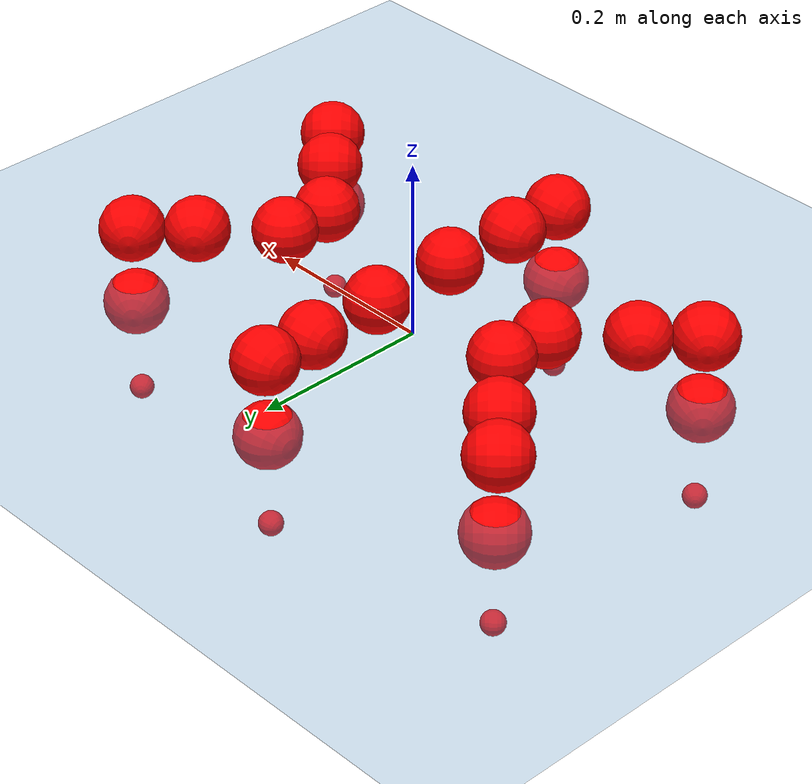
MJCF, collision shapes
<mujoco model="Golem">
  <compiler angle="radian" assetdir="assets" balanceinertia="true" inertiafromgeom="false"/>

  <option timestep="0.005" density="1.2" viscosity="2e-05"/>

  <size nkey="1"/>

  <visual>
    <quality shadowsize="8192"/>
    <map shadowclip="0.5"/>
  </visual>

  <default>
    <default class="/">
      <joint armature="0.01" damping="0.01" frictionloss="0.01"/>
      <geom contype="0" conaffinity="0" group="1" solref="-1000 -80"/>
      <site size="0.01 0.005 0.005" group="5"/>
      <general forcelimited="true" biastype="affine" gainprm="25" biasprm="0 -25 -0.5"/>
      <default class="visual">
        <geom type="mesh" group="2"/>
      </default>
      <default class="collision">
        <geom group="3"/>
      </default>
      <default class="foot">
        <geom size="0.01 0 0" condim="6" group="4" priority="1" solimp="0.015 1 0.01"/>
      </default>
      <default class="reward_collision_sphere">
        <geom group="5" rgba="1 0 0 1"/>
      </default>
    </default>
  </default>

  <asset>
    <texture type="skybox" colorspace="auto" name="//unnamed_texture_0" builtin="gradient" rgb1="0.95 0.95 0.95" rgb2="0.95 0.95 0.95" width="100" height="600"/>
    <texture type="2d" colorspace="auto" name="texplane" builtin="checker" rgb1="0.345 0.575 0.748" rgb2="0.345 0.575 0.748" markrgb="1 1 1" width="512" height="512"/>
    <material name="MatPlane" class="/" texture="texplane" texuniform="true" texrepeat="2 2" specular="0.9"/>
    <mesh name="body" class="/" file="body.stl" scale="0.001 0.001 0.001"/>
    <mesh name="coxa" class="/" file="coxa.stl" scale="0.001 0.001 0.001"/>
    <mesh name="femur" class="/" file="femur.stl" scale="0.001 0.001 0.001"/>
    <mesh name="tibia" class="/" file="tibia.stl" scale="0.001 0.001 0.001"/>
    <mesh name="tarsus" class="/" file="tarsus.stl" scale="0.001 0.001 0.001"/>
  </asset>

  <worldbody>
    <geom name="floor" class="/" size="100 100 0.125" type="plane" group="0" material="MatPlane"/>
    <light name="toplight_shadow" class="/" pos="0 0 5" dir="0.0990148 0.0990148 -0.990148" type="directional" ambient="0.04 0.04 0.04" diffuse="0.55 0.55 0.55" specular="0.12 0.12 0.12"/>
    <light name="toplight_fill" class="/" pos="0 0 5" dir="0.0990148 0.0990148 -0.990148" type="directional" castshadow="false" ambient="0.04 0.04 0.04" diffuse="0.3 0.3 0.3" specular="0.08 0.08 0.08"/>
    <body name="trunk" pos="0.000458733 -3.66626e-05 -7.75038e-05" quat="1 -2.86334e-05 0.000333314 -4.16931e-05">
      <inertial pos="0.00012163 -0.00113832 -0.00328939" quat="0.999997 -0.000850773 0.00187749 -0.00103425" mass="2.56499" diaginertia="0.0116281 0.000937801 0.0103205"/>
      <joint name="//unnamed_joint_0" type="free"/>
      <geom name="//unnamed_geom_1" class="/" pos="0 0 0.0643928" quat="1 0 0 0" type="mesh" rgba="0.9 0.9 0.9 1" mesh="body"/>
      <site name="imu" class="/" pos="0.137013 0.000269338 0.098686" size="0.00886387"/>
      <camera name="track" class="/" pos="0 -1.24391 0" quat="0.707107 0.707107 0 0" mode="trackcom"/>
      <camera name="ego_camera" class="/" pos="0.134038 0 0.100614" quat="-0.5 -0.5 0.5 0.5"/>
      <body name="coxa_RR" pos="-0.183154 -0.0514335 0.0645445" quat="0.382498 0.000353397 3.85442e-05 -0.923956">
        <inertial pos="-0.000483078 0.000832366 0.000377819" quat="0.999999 0.00145332 -0.000349106 -0.000727478" mass="0.138603" diaginertia="0.0116203 0.000931107 0.0102505"/>
        <joint name="coxa_joint_RR" class="/" pos="0 0 0" axis="-0.00019109 -0.00219013 -0.999998" range="-3.1253 3.1473" armature="0.00881765" damping="0.00845229" frictionloss="0.00872263"/>
        <geom name="//unnamed_geom_2" class="/" type="mesh" rgba="0.2 0.2 0.2 1" mesh="coxa"/>
        <geom name="//unnamed_geom_3" class="reward_collision_sphere" size="0.0354555" pos="-0.030932 0 0"/>
        <body name="femur_RR" pos="0.0605126 0.000569517 -0.00119599" quat="0.500016 -0.500009 0.499965 0.500011">
          <inertial pos="0.000249586 0.000314439 -2.45366e-06" quat="1 0.000222066 -3.71328e-05 -0.000127654" mass="0.138869" diaginertia="0.0116001 0.000926437 0.0102339"/>
          <joint name="femur_joint_RR" class="/" pos="0 0 0" axis="-0.00114419 0.00246443 -0.999996" range="-3.13567 3.13579" armature="0.00918868" damping="0.000513259" frictionloss="0.0088282"/>
          <geom name="//unnamed_geom_4" class="/" type="mesh" rgba="0.9 0.9 0.9 1" mesh="femur"/>
          <geom name="//unnamed_geom_5" class="reward_collision_sphere" size="0.0354555"/>
          <body name="tibia_RR" pos="0.000515058 -0.0671182 0.00174003" quat="1.58951e-06 1 4.8942e-07 -6.51014e-07">
            <inertial pos="0.000751864 -6.71139e-06 -7.99015e-05" quat="0.999999 -0.00110278 -0.00068901 0.000253305" mass="0.140954" diaginertia="0.0118236 0.000939088 0.0104699"/>
            <joint name="tibia_joint_RR" class="/" pos="0 0 0" axis="0.00171094 0.000714201 0.999998" range="-3.13952 3.15443" armature="0.00888198" damping="0.00107118" frictionloss="0.0089528"/>
            <geom name="//unnamed_geom_6" class="/" type="mesh" rgba="0.2 0.2 0.2 1" mesh="tibia"/>
            <geom name="//unnamed_geom_7" class="reward_collision_sphere" size="0.0354555"/>
            <body name="tarsus_RR" pos="0.0874656 -0.000308795 2.26281e-05" quat="1 -7.96006e-07 1.34293e-06 -2.09059e-06">
              <inertial pos="0.0614748 9.56747e-05 -0.000430804" quat="0.500114 0.499493 0.501868 0.498519" mass="0.137662" diaginertia="0.0116393 0.000914299 0.0101873"/>
              <joint name="tarsus_joint_RR" class="/" pos="0 0 0" axis="-0.00198573 -0.00231366 0.999995" range="-3.13686 3.13999" armature="0.00887738" damping="0.00412073" frictionloss="0.00868396"/>
              <geom name="//unnamed_geom_8" class="/" type="mesh" rgba="0.9 0.9 0.9 1" mesh="tarsus"/>
              <geom name="foot_1" class="foot" size="0.00867416" pos="0.115479 0 0" quat="0 -0.707107 0 0.707107"/>
              <geom name="//unnamed_geom_10" class="reward_collision_sphere" size="0.0354555"/>
              <geom name="//unnamed_geom_11" class="reward_collision_sphere" size="0.0132958" pos="0.11084 0 0"/>
              <site name="foot_1" class="foot" pos="0.115479 0 0" quat="0 -0.707107 0 0.707107" size="0.00886387"/>
            </body>
          </body>
        </body>
      </body>
      <body name="coxa_RM" pos="-0.000411673 -0.0838376 0.0653809" quat="0.70702 7.83497e-05 8.86464e-05 -0.707194">
        <inertial pos="0.000224604 0.000932318 -0.000366437" quat="1 6.89237e-06 -0.000869501 0.00022126" mass="0.140267" diaginertia="0.0118623 0.000942024 0.0103633"/>
        <joint name="coxa_joint_RM" class="/" pos="0 0 0" axis="-3.31952e-05 -0.00222988 -0.999998" range="-3.1364 3.13093" armature="0.00901351" damping="0.00931665" frictionloss="0.0084728"/>
        <geom name="//unnamed_geom_12" class="/" type="mesh" rgba="0.2 0.2 0.2 1" mesh="coxa"/>
        <geom name="//unnamed_geom_13" class="reward_collision_sphere" size="0.0354555" pos="-0.030932 0 0"/>
        <body name="femur_RM" pos="0.0595683 -0.000792674 -0.00134103" quat="0.50022 -0.500048 0.500066 0.499665">
          <inertial pos="-0.000423443 0.000659682 -6.75996e-05" quat="0.999999 0.000726314 0.000326606 -0.000829333" mass="0.139503" diaginertia="0.0116136 0.000936823 0.010337"/>
          <joint name="femur_joint_RM" class="/" pos="0 0 0" axis="-0.000395452 -0.000278317 -1" range="-3.1306 3.13044" armature="0.00907558" damping="0.00798844" frictionloss="0.00898276"/>
          <geom name="//unnamed_geom_14" class="/" type="mesh" rgba="0.9 0.9 0.9 1" mesh="femur"/>
          <geom name="//unnamed_geom_15" class="reward_collision_sphere" size="0.0354555"/>
          <body name="tibia_RM" pos="-0.000303067 -0.0668185 -0.00068161" quat="1.81516e-05 1 -5.19249e-05 1.8106e-05">
            <inertial pos="0.000169541 -0.000275661 0.000173877" quat="0.999997 0.000858283 -0.00246219 0.000159286" mass="0.14016" diaginertia="0.0116771 0.000935514 0.0103545"/>
            <joint name="tibia_joint_RM" class="/" pos="0 0 0" axis="0.000542041 -0.00091532 0.999999" range="-3.12906 3.14699" armature="0.0090811" damping="0.00654012" frictionloss="0.00889898"/>
            <geom name="//unnamed_geom_16" class="/" type="mesh" rgba="0.2 0.2 0.2 1" mesh="tibia"/>
            <geom name="//unnamed_geom_17" class="reward_collision_sphere" size="0.0354555"/>
            <body name="tarsus_RM" pos="0.0908045 0.000334203 0.00110018" quat="1 -0.000105706 -8.35298e-05 -0.000215726">
              <inertial pos="0.0623912 0.000628625 0.00079185" quat="0.500467 0.497105 0.500136 0.502278" mass="0.139116" diaginertia="0.0115746 0.000929343 0.0102431"/>
              <joint name="tarsus_joint_RM" class="/" pos="0 0 0" axis="0.00132678 -0.00038431 0.999999" range="-3.14341 3.15564" armature="0.00887088" damping="0" frictionloss="0.00865099"/>
              <geom name="//unnamed_geom_18" class="/" type="mesh" rgba="0.9 0.9 0.9 1" mesh="tarsus"/>
              <geom name="foot_2" class="foot" size="0.00895862" pos="0.115479 0 0" quat="0 -0.707107 0 0.707107"/>
              <geom name="//unnamed_geom_20" class="reward_collision_sphere" size="0.0354555"/>
              <geom name="//unnamed_geom_21" class="reward_collision_sphere" size="0.0132958" pos="0.11084 0 0"/>
              <site name="foot_2" class="foot" pos="0.115479 0 0" quat="0 -0.707107 0 0.707107" size="0.00886387"/>
            </body>
          </body>
        </body>
      </body>
      <body name="coxa_RF" pos="0.185061 -0.0519263 0.0644408" quat="0.923856 -0.000116764 5.14417e-05 -0.38274">
        <inertial pos="0.000184753 0.0001559 -0.000350488" quat="0.999997 -0.000499029 0.00130645 0.00181965" mass="0.138518" diaginertia="0.0115947 0.0009315 0.0102606"/>
        <joint name="coxa_joint_RF" class="/" pos="0 0 0" axis="0.000613946 -0.00526315 -0.999986" range="-3.13908 3.12918" armature="0.00877309" damping="0" frictionloss="0.00901912"/>
        <geom name="//unnamed_geom_22" class="/" type="mesh" rgba="0.2 0.2 0.2 1" mesh="coxa"/>
        <geom name="//unnamed_geom_23" class="reward_collision_sphere" size="0.0354555" pos="-0.030932 0 0"/>
        <body name="femur_RF" pos="0.0612552 0.00115002 7.4512e-05" quat="0.500041 -0.500355 0.499675 0.499929">
          <inertial pos="0.000458764 -0.000214107 0.00069271" quat="0.999991 0.00256988 -0.000198585 0.00344972" mass="0.140344" diaginertia="0.0117341 0.000940111 0.0104276"/>
          <joint name="femur_joint_RF" class="/" pos="0 0 0" axis="-0.000664453 -0.0010613 -0.999999" range="-3.154 3.1217" armature="0.00874567" damping="0.00576617" frictionloss="0.00894379"/>
          <geom name="//unnamed_geom_24" class="/" type="mesh" rgba="0.9 0.9 0.9 1" mesh="femur"/>
          <geom name="//unnamed_geom_25" class="reward_collision_sphere" size="0.0354555"/>
          <body name="tibia_RF" pos="-0.000613691 -0.0678191 0.000363841" quat="8.53661e-05 1 -2.06333e-05 0.000118034">
            <inertial pos="0.000451689 0.000747402 4.00041e-05" quat="0.999997 -0.000736179 -0.00203264 0.000805565" mass="0.137096" diaginertia="0.0115651 0.000925195 0.0102223"/>
            <joint name="tibia_joint_RF" class="/" pos="0 0 0" axis="-0.00011502 -5.4485e-05 1" range="-3.14388 3.14682" armature="0.00884562" damping="0" frictionloss="0.00884286"/>
            <geom name="//unnamed_geom_26" class="/" type="mesh" rgba="0.2 0.2 0.2 1" mesh="tibia"/>
            <geom name="//unnamed_geom_27" class="reward_collision_sphere" size="0.0354555"/>
            <body name="tarsus_RF" pos="0.0912805 -2.70119e-05 -0.000665998" quat="1 7.57756e-05 -0.000393219 0.000227521">
              <inertial pos="0.0620838 -0.000222484 0.000399767" quat="0.500009 0.499981 0.500001 0.500008" mass="0.137923" diaginertia="0.0115443 0.000926056 0.0102421"/>
              <joint name="tarsus_joint_RF" class="/" pos="0 0 0" axis="0.00120638 -0.00452933 0.999989" range="-3.1387 3.12843" armature="0.00910079" damping="0" frictionloss="0.00874077"/>
              <geom name="//unnamed_geom_28" class="/" type="mesh" rgba="0.9 0.9 0.9 1" mesh="tarsus"/>
              <geom name="foot_3" class="foot" size="0.00905524" pos="0.115479 0 0" quat="0 -0.707107 0 0.707107"/>
              <geom name="//unnamed_geom_30" class="reward_collision_sphere" size="0.0354555"/>
              <geom name="//unnamed_geom_31" class="reward_collision_sphere" size="0.0132958" pos="0.11084 0 0"/>
              <site name="foot_3" class="foot" pos="0.115479 0 0" quat="0 -0.707107 0 0.707107" size="0.00886387"/>
            </body>
          </body>
        </body>
      </body>
      <body name="coxa_LR" pos="-0.182395 0.0534778 0.0659926" quat="0.382735 8.05424e-05 -0.000187511 0.923858">
        <inertial pos="0.000369636 -5.95859e-05 0.00123266" quat="0.999992 0.000896358 -0.000671518 0.00387882" mass="0.139096" diaginertia="0.0115831 0.000918132 0.0102174"/>
        <joint name="coxa_joint_LR" class="/" pos="0 0 0" axis="0.00162427 -0.00518052 -0.999985" range="-3.14155 3.13128" armature="0.00878866" damping="0.00681468" frictionloss="0.00856751"/>
        <geom name="//unnamed_geom_32" class="/" type="mesh" rgba="0.2 0.2 0.2 1" mesh="coxa"/>
        <geom name="//unnamed_geom_33" class="reward_collision_sphere" size="0.0354555" pos="-0.030932 0 0"/>
        <body name="femur_LR" pos="0.062554 -0.00234226 -0.000410722" quat="0.500158 -0.499958 0.499784 0.5001">
          <inertial pos="0.000178262 0.000310736 -0.000604695" quat="0.999992 0.00319319 -0.000916483 0.00200389" mass="0.13803" diaginertia="0.0116596 0.000932469 0.0103059"/>
          <joint name="femur_joint_LR" class="/" pos="0 0 0" axis="-0.000409392 0.001859 0.999998" range="-3.14044 3.13937" armature="0.00847081" damping="0.00347949" frictionloss="0.00876167"/>
          <geom name="//unnamed_geom_34" class="/" type="mesh" rgba="0.9 0.9 0.9 1" mesh="femur"/>
          <geom name="//unnamed_geom_35" class="reward_collision_sphere" size="0.0354555"/>
          <body name="tibia_LR" pos="0.000922966 -0.0682314 -0.000925091" quat="-3.19016e-05 1 -2.91007e-05 -4.03497e-05">
            <inertial pos="-0.000238289 -4.17226e-06 0.000561514" quat="0.999997 -0.00184578 0.00136974 -0.00012058" mass="0.137744" diaginertia="0.011527 0.000918245 0.0101508"/>
            <joint name="tibia_joint_LR" class="/" pos="0 0 0" axis="0.00224612 -0.00091598 -0.999997" range="-3.14989 3.12167" armature="0.00918788" damping="0" frictionloss="0.00848692"/>
            <geom name="//unnamed_geom_36" class="/" type="mesh" rgba="0.2 0.2 0.2 1" mesh="tibia"/>
            <geom name="//unnamed_geom_37" class="reward_collision_sphere" size="0.0354555"/>
            <body name="tarsus_LR" pos="0.0907542 0.000216905 0.00188006" quat="1 -4.22815e-05 8.38775e-05 -8.98953e-05">
              <inertial pos="0.0627598 3.98381e-05 -0.000837067" quat="0.4998 0.500002 0.500247 0.499952" mass="0.139035" diaginertia="0.0115446 0.000926224 0.010372"/>
              <joint name="tarsus_joint_LR" class="/" pos="0 0 0" axis="-0.00316391 -0.000445282 -0.999995" range="-3.15608 3.15538" armature="0.00919547" damping="0" frictionloss="0.00886605"/>
              <geom name="//unnamed_geom_38" class="/" type="mesh" rgba="0.9 0.9 0.9 1" mesh="tarsus"/>
              <geom name="foot_4" class="foot" size="0.00872616" pos="0.115479 0 0" quat="0.707107 0 -0.707107 0"/>
              <geom name="//unnamed_geom_40" class="reward_collision_sphere" size="0.0354555"/>
              <geom name="//unnamed_geom_41" class="reward_collision_sphere" size="0.0132958" pos="0.11084 0 0"/>
              <site name="foot_4" class="foot" pos="0.115479 0 0" quat="0.707107 0 -0.707107 0" size="0.00886387"/>
            </body>
          </body>
        </body>
      </body>
      <body name="coxa_LM" pos="-0.00198199 0.0817228 0.0652806" quat="0.707376 8.53849e-05 4.05595e-05 0.706837">
        <inertial pos="0.000264168 2.89494e-05 0.0012742" quat="0.999994 -0.00088957 -0.0017014 0.00287169" mass="0.136937" diaginertia="0.0116055 0.000925498 0.0102148"/>
        <joint name="coxa_joint_LM" class="/" pos="0 0 0" axis="0.00151306 -0.00265383 -0.999995" range="-3.1327 3.14034" armature="0.00863879" damping="0.00732576" frictionloss="0.00882507"/>
        <geom name="//unnamed_geom_42" class="/" type="mesh" rgba="0.2 0.2 0.2 1" mesh="coxa"/>
        <geom name="//unnamed_geom_43" class="reward_collision_sphere" size="0.0354555" pos="-0.030932 0 0"/>
        <body name="femur_LM" pos="0.057543 0.00103564 -0.00110071" quat="0.499954 -0.499923 0.500152 0.49997">
          <inertial pos="-0.000581572 -0.00103803 0.000894674" quat="0.999999 -0.000886862 3.63155e-05 0.0012389" mass="0.138224" diaginertia="0.011622 0.000919558 0.0103483"/>
          <joint name="femur_joint_LM" class="/" pos="0 0 0" axis="0.00240966 -0.000860536 0.999997" range="-3.13807 3.13732" armature="0.00867635" damping="0.0025461" frictionloss="0.00858957"/>
          <geom name="//unnamed_geom_44" class="/" type="mesh" rgba="0.9 0.9 0.9 1" mesh="femur"/>
          <geom name="//unnamed_geom_45" class="reward_collision_sphere" size="0.0354555"/>
          <body name="tibia_LM" pos="-0.000369639 -0.0636948 0.00168799" quat="-3.76509e-05 1 2.64861e-05 -8.03898e-05">
            <inertial pos="0.000385693 -0.0011067 -0.000780828" quat="0.999995 -0.00299945 -0.000644233 0.000169643" mass="0.138235" diaginertia="0.0116892 0.000930555 0.010332"/>
            <joint name="tibia_joint_LM" class="/" pos="0 0 0" axis="-0.000193313 -0.00381627 -0.999993" range="-3.1375 3.13539" armature="0.00904506" damping="0.00507636" frictionloss="0.00861998"/>
            <geom name="//unnamed_geom_46" class="/" type="mesh" rgba="0.2 0.2 0.2 1" mesh="tibia"/>
            <geom name="//unnamed_geom_47" class="reward_collision_sphere" size="0.0354555"/>
            <body name="tarsus_LM" pos="0.0898683 9.47426e-05 -0.000336499" quat="1 0.00014057 -1.45574e-05 9.85251e-06">
              <inertial pos="0.0623479 -0.000991164 -0.000193659" quat="0.499985 0.499929 0.500178 0.499908" mass="0.139015" diaginertia="0.0116589 0.000931614 0.0102489"/>
              <joint name="tarsus_joint_LM" class="/" pos="0 0 0" axis="0.00409943 -0.0019722 -0.99999" stiffness="0.0010492" range="-3.13191 3.14089" armature="0.00893157" damping="0.00253098" frictionloss="0.00872674"/>
              <geom name="//unnamed_geom_48" class="/" type="mesh" rgba="0.9 0.9 0.9 1" mesh="tarsus"/>
              <geom name="foot_5" class="foot" size="0.0089131" pos="0.115479 0 0" quat="0.707107 0 -0.707107 0"/>
              <geom name="//unnamed_geom_50" class="reward_collision_sphere" size="0.0354555"/>
              <geom name="//unnamed_geom_51" class="reward_collision_sphere" size="0.0132958" pos="0.11084 0 0"/>
              <site name="foot_5" class="foot" pos="0.115479 0 0" quat="0.707107 0 -0.707107 0" size="0.00886387"/>
            </body>
          </body>
        </body>
      </body>
      <body name="coxa_LF" pos="0.184073 0.0516179 0.0650255" quat="0.923915 5.51656e-05 0.000104439 0.382598">
        <inertial pos="-0.000527343 0.00049473 -4.97875e-05" quat="1 -4.28893e-05 -0.000551629 -0.000216523" mass="0.138821" diaginertia="0.0117685 0.000935296 0.0103104"/>
        <joint name="coxa_joint_LF" class="/" pos="0 0 0" axis="-0.00466234 -0.000692067 -0.999989" range="-3.1327 3.14212" armature="0.00918283" damping="0.000122177" frictionloss="0.00897099"/>
        <geom name="//unnamed_geom_52" class="/" type="mesh" rgba="0.2 0.2 0.2 1" mesh="coxa"/>
        <geom name="//unnamed_geom_53" class="reward_collision_sphere" size="0.0354555" pos="-0.030932 0 0"/>
        <body name="femur_LF" pos="0.0609939 0.000459487 0.00030053" quat="0.500068 -0.499924 0.500149 0.499859">
          <inertial pos="0.000401258 -0.000935662 -0.000116495" quat="0.999998 -0.000488375 0.000322404 -0.00190105" mass="0.139111" diaginertia="0.011722 0.000927614 0.0103003"/>
          <joint name="femur_joint_LF" class="/" pos="0 0 0" axis="0.00138698 0.00211175 0.999997" range="-3.13723 3.133" armature="0.00885927" damping="0.00235521" frictionloss="0.00887996"/>
          <geom name="//unnamed_geom_54" class="/" type="mesh" rgba="0.9 0.9 0.9 1" mesh="femur"/>
          <geom name="//unnamed_geom_55" class="reward_collision_sphere" size="0.0354555"/>
          <body name="tibia_LF" pos="0.000180618 -0.06832 0.000802169" quat="-0.000139306 1 -0.000419296 5.9092e-05">
            <inertial pos="0.000432223 0.000211882 -0.000158998" quat="0.999991 -0.00283918 -0.000918336 -0.00294913" mass="0.139981" diaginertia="0.0117884 0.000932428 0.010324"/>
            <joint name="tibia_joint_LF" class="/" pos="0 0 0" axis="-0.00493622 -0.00284288 -0.999984" range="-3.14096 3.12828" armature="0.00884914" damping="0" frictionloss="0.00867514"/>
            <geom name="//unnamed_geom_56" class="/" type="mesh" rgba="0.2 0.2 0.2 1" mesh="tibia"/>
            <geom name="//unnamed_geom_57" class="reward_collision_sphere" size="0.0354555"/>
            <body name="tarsus_LF" pos="0.0906916 0.000188331 -0.000756821" quat="1 4.68215e-05 7.60829e-07 -4.35851e-06">
              <inertial pos="0.0628141 0.000866648 0.000451431" quat="0.500177 0.500178 0.501298 0.498342" mass="0.139157" diaginertia="0.0115814 0.000926339 0.0103053"/>
              <joint name="tarsus_joint_LF" class="/" pos="0 0 0" axis="0.00265778 0.00223416 -0.999994" range="-3.146 3.12271" armature="0.00907537" damping="0.00926585" frictionloss="0.00880575"/>
              <geom name="//unnamed_geom_58" class="/" type="mesh" rgba="0.9 0.9 0.9 1" mesh="tarsus"/>
              <geom name="foot_6" class="foot" size="0.00856305" pos="0.115479 0 0" quat="0.707107 0 -0.707107 0"/>
              <geom name="//unnamed_geom_60" class="reward_collision_sphere" size="0.0354555"/>
              <geom name="//unnamed_geom_61" class="reward_collision_sphere" size="0.0132958" pos="0.11084 0 0"/>
              <site name="foot_6" class="foot" pos="0.115479 0 0" quat="0.707107 0 -0.707107 0" size="0.00886387"/>
            </body>
          </body>
        </body>
      </body>
    </body>
  </worldbody>

  <contact>
    <pair class="/" geom1="floor" geom2="foot_1" name="//unnamed_contact_0"/>
    <pair class="/" geom1="floor" geom2="foot_2" name="//unnamed_contact_1"/>
    <pair class="/" geom1="floor" geom2="foot_3" name="//unnamed_contact_2"/>
    <pair class="/" geom1="floor" geom2="foot_4" name="//unnamed_contact_3"/>
    <pair class="/" geom1="floor" geom2="foot_5" name="//unnamed_contact_4"/>
    <pair class="/" geom1="floor" geom2="foot_6" name="//unnamed_contact_5"/>
  </contact>

  <actuator>
    <general name="coxa_joint_RR" class="/" joint="coxa_joint_RR" forcerange="-6.54125 6.54125" gainprm="21.3224" biasprm="0 -21.3224 -0.455457"/>
    <general name="femur_joint_RR" class="/" joint="femur_joint_RR" forcerange="-6.25757 6.25757" gainprm="21.3224" biasprm="0 -21.3224 -0.455457"/>
    <general name="tibia_joint_RR" class="/" joint="tibia_joint_RR" forcerange="-6.54516 6.54516" gainprm="21.3224" biasprm="0 -21.3224 -0.455457"/>
    <general name="tarsus_joint_RR" class="/" joint="tarsus_joint_RR" forcerange="-6.38997 6.38997" gainprm="21.3224" biasprm="0 -21.3224 -0.455457"/>
    <general name="coxa_joint_RM" class="/" joint="coxa_joint_RM" forcerange="-6.68413 6.68413" gainprm="21.3224" biasprm="0 -21.3224 -0.455457"/>
    <general name="femur_joint_RM" class="/" joint="femur_joint_RM" forcerange="-6.5468 6.5468" gainprm="21.3224" biasprm="0 -21.3224 -0.455457"/>
    <general name="tibia_joint_RM" class="/" joint="tibia_joint_RM" forcerange="-6.36959 6.36959" gainprm="21.3224" biasprm="0 -21.3224 -0.455457"/>
    <general name="tarsus_joint_RM" class="/" joint="tarsus_joint_RM" forcerange="-6.54035 6.54035" gainprm="21.3224" biasprm="0 -21.3224 -0.455457"/>
    <general name="coxa_joint_RF" class="/" joint="coxa_joint_RF" forcerange="-6.3472 6.3472" gainprm="21.3224" biasprm="0 -21.3224 -0.455457"/>
    <general name="femur_joint_RF" class="/" joint="femur_joint_RF" forcerange="-6.48799 6.48799" gainprm="21.3224" biasprm="0 -21.3224 -0.455457"/>
    <general name="tibia_joint_RF" class="/" joint="tibia_joint_RF" forcerange="-6.45229 6.45229" gainprm="21.3224" biasprm="0 -21.3224 -0.455457"/>
    <general name="tarsus_joint_RF" class="/" joint="tarsus_joint_RF" forcerange="-6.48356 6.48356" gainprm="21.3224" biasprm="0 -21.3224 -0.455457"/>
    <general name="coxa_joint_LR" class="/" joint="coxa_joint_LR" forcerange="-6.4881 6.4881" gainprm="21.3224" biasprm="0 -21.3224 -0.455457"/>
    <general name="femur_joint_LR" class="/" joint="femur_joint_LR" forcerange="-6.46893 6.46893" gainprm="21.3224" biasprm="0 -21.3224 -0.455457"/>
    <general name="tibia_joint_LR" class="/" joint="tibia_joint_LR" forcerange="-6.29029 6.29029" gainprm="21.3224" biasprm="0 -21.3224 -0.455457"/>
    <general name="tarsus_joint_LR" class="/" joint="tarsus_joint_LR" forcerange="-6.54488 6.54488" gainprm="21.3224" biasprm="0 -21.3224 -0.455457"/>
    <general name="coxa_joint_LM" class="/" joint="coxa_joint_LM" forcerange="-6.56301 6.56301" gainprm="21.3224" biasprm="0 -21.3224 -0.455457"/>
    <general name="femur_joint_LM" class="/" joint="femur_joint_LM" forcerange="-6.49581 6.49581" gainprm="21.3224" biasprm="0 -21.3224 -0.455457"/>
    <general name="tibia_joint_LM" class="/" joint="tibia_joint_LM" forcerange="-6.45241 6.45241" gainprm="21.3224" biasprm="0 -21.3224 -0.455457"/>
    <general name="tarsus_joint_LM" class="/" joint="tarsus_joint_LM" forcerange="-6.65465 6.65465" gainprm="21.3224" biasprm="0 -21.3224 -0.455457"/>
    <general name="coxa_joint_LF" class="/" joint="coxa_joint_LF" forcerange="-6.66196 6.66196" gainprm="21.3224" biasprm="0 -21.3224 -0.455457"/>
    <general name="femur_joint_LF" class="/" joint="femur_joint_LF" forcerange="-6.67184 6.67184" gainprm="21.3224" biasprm="0 -21.3224 -0.455457"/>
    <general name="tibia_joint_LF" class="/" joint="tibia_joint_LF" forcerange="-6.465 6.465" gainprm="21.3224" biasprm="0 -21.3224 -0.455457"/>
    <general name="tarsus_joint_LF" class="/" joint="tarsus_joint_LF" forcerange="-6.63114 6.63114" gainprm="21.3224" biasprm="0 -21.3224 -0.455457"/>
  </actuator>

  <sensor>
    <gyro site="imu" name="imu_angular_velocity"/>
    <velocimeter site="imu" name="imu_linear_velocity"/>
    <framelinvel objtype="site" objname="foot_1" name="foot_1_global_linear_velocity"/>
    <framelinvel objtype="site" objname="foot_2" name="foot_2_global_linear_velocity"/>
    <framelinvel objtype="site" objname="foot_3" name="foot_3_global_linear_velocity"/>
    <framelinvel objtype="site" objname="foot_4" name="foot_4_global_linear_velocity"/>
    <framelinvel objtype="site" objname="foot_5" name="foot_5_global_linear_velocity"/>
    <framelinvel objtype="site" objname="foot_6" name="foot_6_global_linear_velocity"/>
  </sensor>

  <keyframe>
    <key name="home" qpos="0 0 0.1457 1 0 0 0 0 0 0 0 0 0 0 0 0 0 0 0 0 0 0 0 0 0 0 0 0 0 0 0"/>
  </keyframe>
</mujoco>
